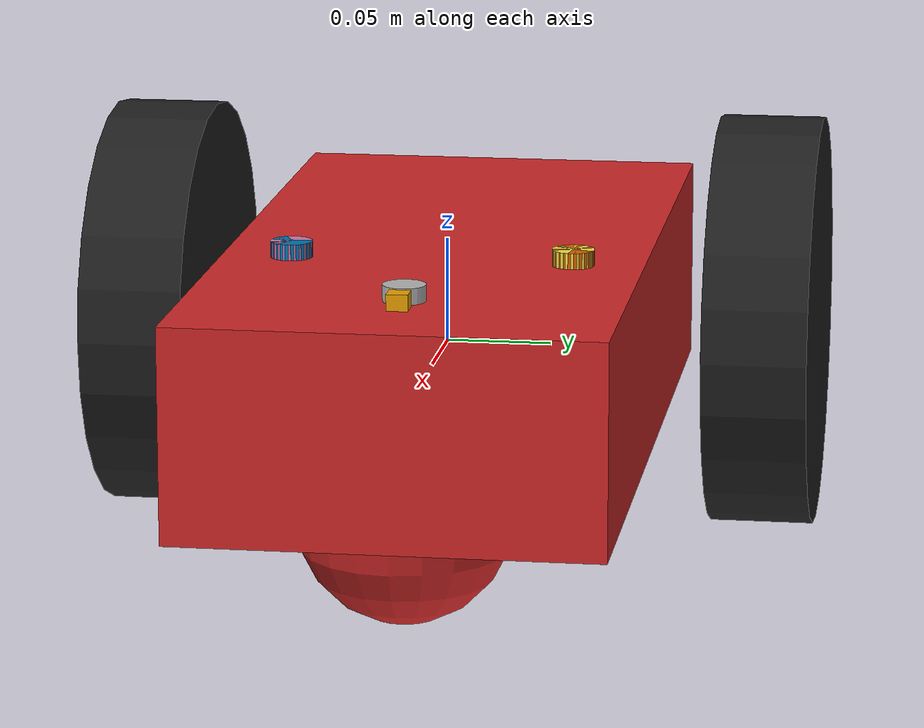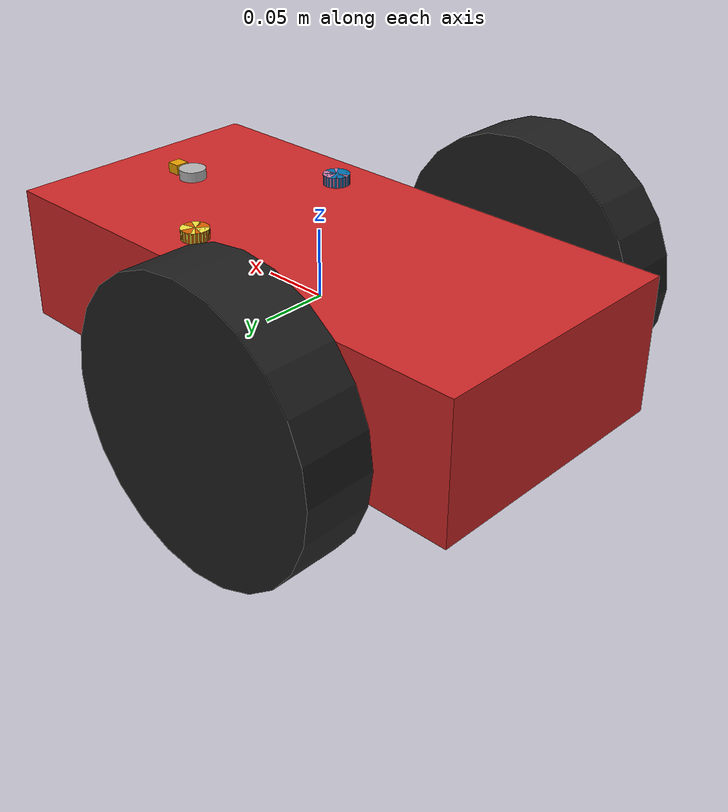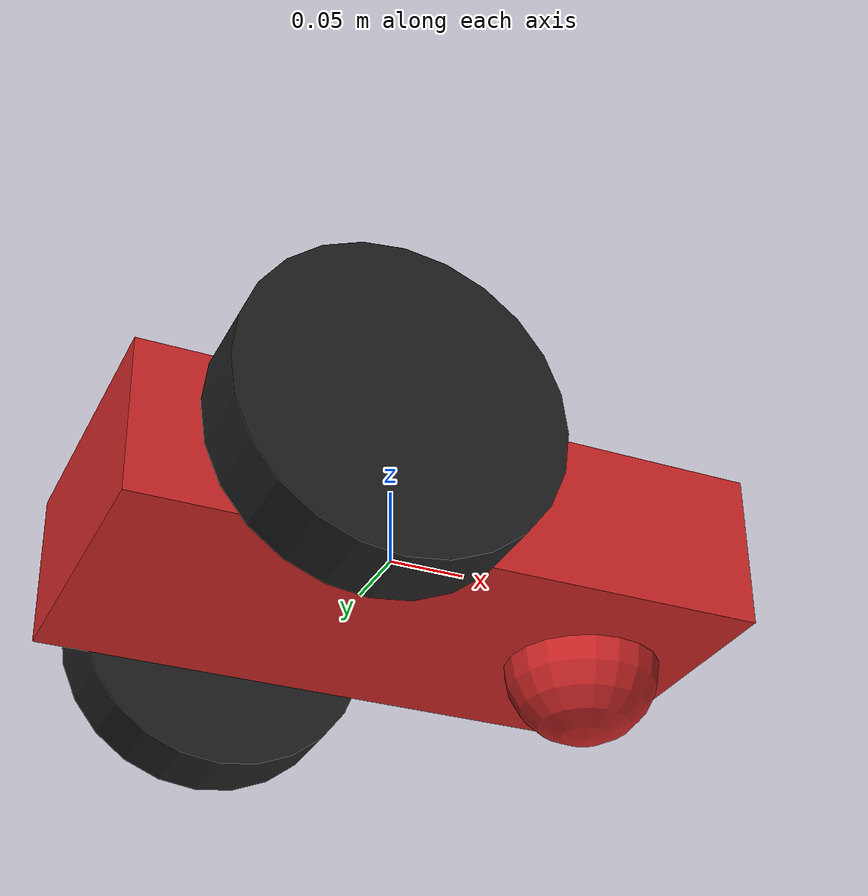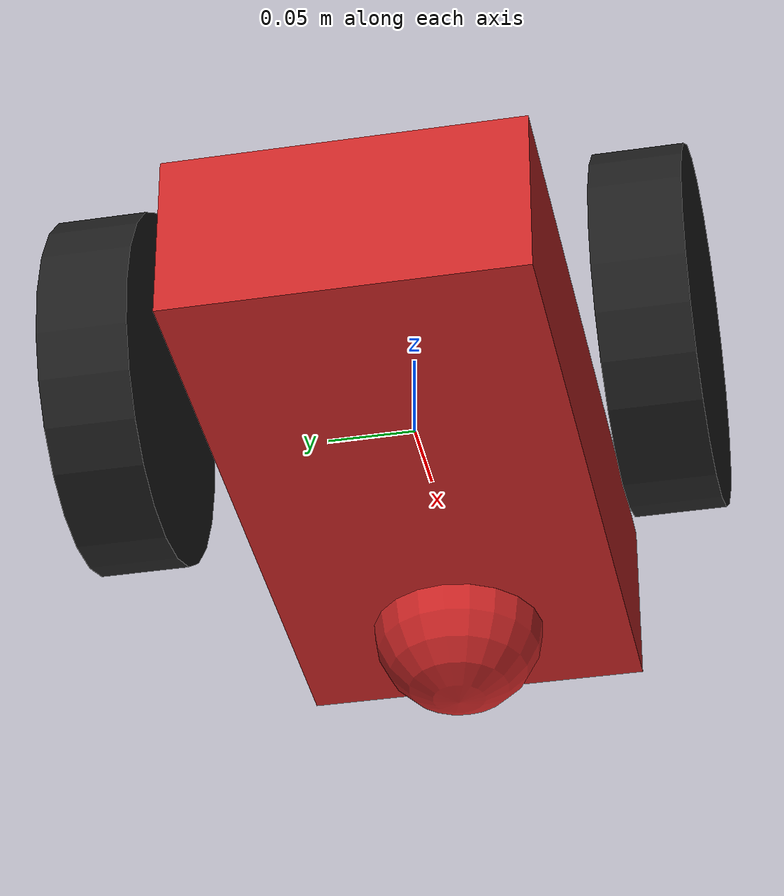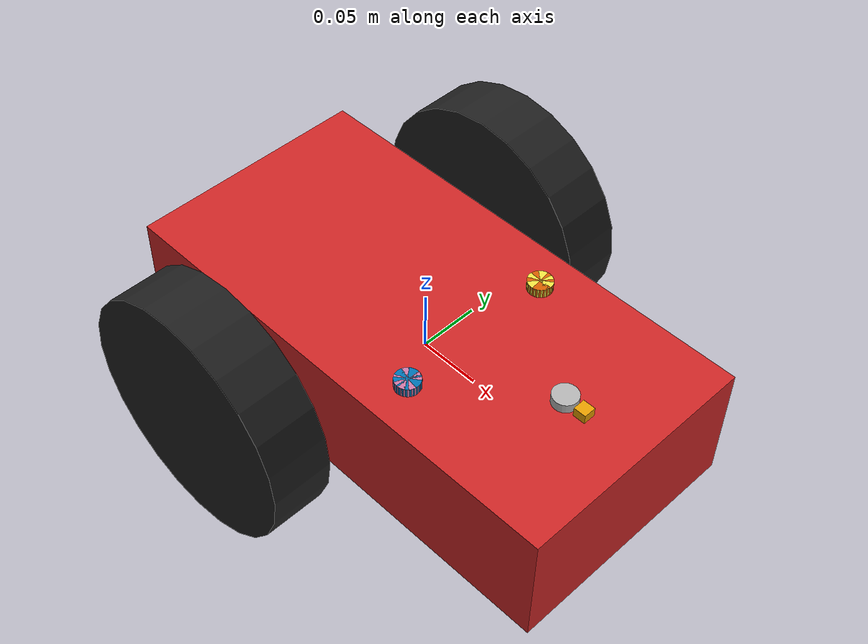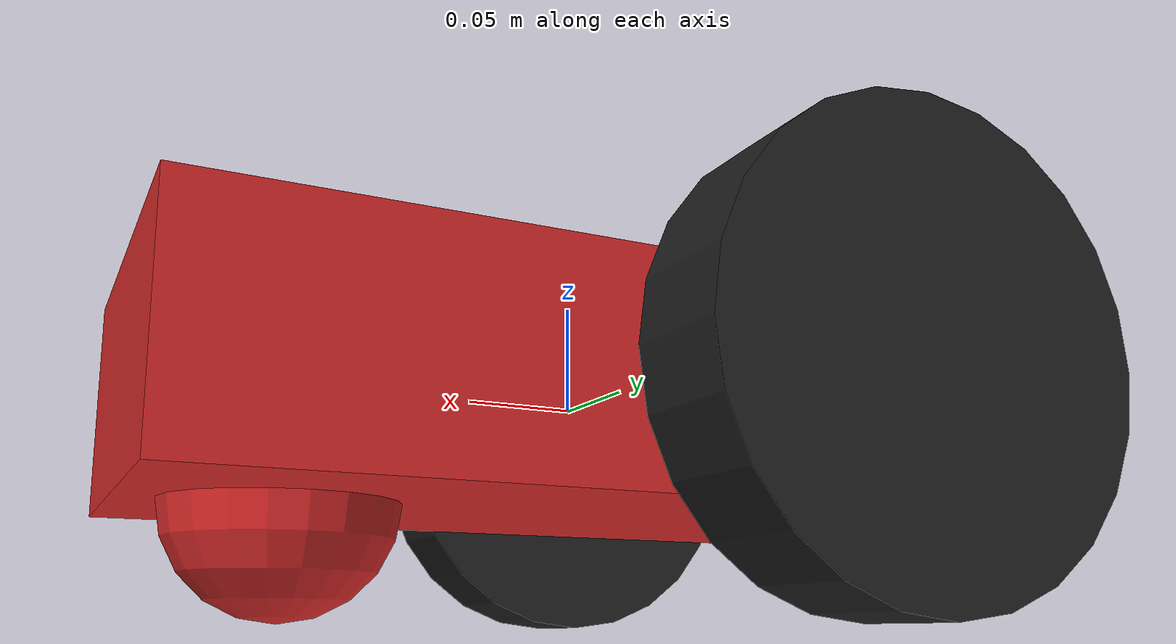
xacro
<?xml version='1.0'?>

<robot name="myrobot" xmlns:xacro="http://www.ros.org/wiki/xacro">

  <xacro:include filename="$(find mobile_robot_description)/urdf/mobile_robot.gazebo" />
  <xacro:include filename="$(find mobile_robot_description)/urdf/materials.xacro" />
    <xacro:property name="robot_length" value="0.40"/>
    <xacro:property name="robot_width"  value="0.20"/>
    <xacro:property name="robot_height" value="0.10"/>
    <xacro:property name="robot_mass" value="10"/>
    <xacro:property name="wheel_radius" value="0.10"/>
    <xacro:property name="wheel_length" value="0.05"/>
    <xacro:property name="wheel_mass" value="5"/>

  <link name='chassis'>

    <inertial>
      <mass value="${robot_mass}"/>
      <origin xyz="0.0 0 0.0" rpy=" 0 0 0"/>
      <inertia
          ixx="${(1/12)*(robot_mass)*(robot_width*robot_width+robot_height*robot_height)}" ixy="0" ixz="0"
          iyy="${(1/12)*(robot_mass)*(robot_length*robot_length+robot_height*robot_height)}" iyz="0"
          izz="${(1/12)*(robot_mass)*(robot_width*robot_width+robot_length*robot_length)}"
      />
    </inertial>

    <collision name='collision'>
      <geometry>
        <box size="${robot_length} ${robot_width} ${robot_height}"/>
      </geometry>
    </collision>

    <visual name='chassis_visual'>
      <geometry>
        <box size="${robot_length} ${robot_width} ${robot_height}"/>
      </geometry>
    </visual>

    <collision name='caster_collision'>
      <origin xyz="${robot_length/3} 0 ${-robot_height/2}" rpy=" 0 0 0"/>
      <geometry>
        <sphere radius="${robot_height/2}"/>
      </geometry>
    </collision>

    <visual name='caster_visual'>
      <origin xyz="${robot_length/3} 0 ${-robot_height/2}" rpy=" 0 0 0"/>
      <geometry>
        <sphere radius="${robot_height/2}"/>
      </geometry>
    </visual>
  </link>

  <link name="left_wheel">
    <!--origin xyz="0.1 0.13 0.1" rpy="0 1.5707 1.5707"/-->
    <collision name="collision">
      <origin xyz="0 0 0" rpy="0 1.5707 1.5707"/>
      <geometry>
        <cylinder radius="${wheel_radius}" length="${wheel_length}"/>
      </geometry>
    </collision>
    <visual name="left_wheel_visual">
      <origin xyz="0 0 0" rpy="0 1.5707 1.5707"/>
      <geometry>
        <cylinder radius="${wheel_radius}" length="${wheel_length}"/>
      </geometry>
    </visual>
    <inertial>
      <origin xyz="0 0 0" rpy="0 1.5707 1.5707"/>
      <mass value="${wheel_mass}"/>
      <cylinder_inertia m="${wheel_mass}" r="${wheel_radius}" h="${wheel_length}"/>
      <inertia
        ixx="${wheel_mass*(1/12)*(3*wheel_radius*wheel_radius+wheel_length*wheel_length)}" ixy="0.0" ixz="0.0"
        iyy="${wheel_mass*(0.5)*(wheel_radius*wheel_radius)}" iyz="0.0"
        izz="${wheel_mass*(1/12)*(3*wheel_radius*wheel_radius+wheel_length*wheel_length)}"/>
    </inertial>
  </link>

  <link name="right_wheel">
    <!--origin xyz="0.1 -0.13 0.1" rpy="0 1.5707 1.5707"/-->
    <collision name="collision">
      <origin xyz="0 0 0" rpy="0 1.5707 1.5707"/>
      <geometry>
        <cylinder radius="${wheel_radius}" length="${wheel_length}"/>
      </geometry>
    </collision>
    <visual name="right_wheel_visual">
      <origin xyz="0 0 0" rpy="0 1.5707 1.5707"/>
      <geometry>
        <cylinder radius="${wheel_radius}" length="${wheel_length}"/>
      </geometry>
    </visual>
    <inertial>
      <origin xyz="0 0 0" rpy="0 1.5707 1.5707"/>
      <mass value="${wheel_mass}"/>
      <cylinder_inertia m="${wheel_mass}" r="${wheel_radius}" h="${wheel_length}"/>
      <inertia
        ixx="${wheel_mass*(1/12)*(3*wheel_radius*wheel_radius+wheel_length*wheel_length)}" ixy="0.0" ixz="0.0"
        iyy="${wheel_mass*(0.5)*(wheel_radius*wheel_radius)}" iyz="0.0"
        izz="${wheel_mass*(1/12)*(3*wheel_radius*wheel_radius+wheel_length*wheel_length)}"/>
    </inertial>
  </link>

  <joint type="continuous" name="left_wheel_hinge">
    <origin xyz="-${robot_width/3} ${robot_width/2+wheel_length} 0" rpy="0 0 0"/>
    <child link="left_wheel"/>
    <parent link="chassis"/>
    <axis xyz="0 1 0" rpy="0 0 0"/>
  </joint>

  <joint type="continuous" name="right_wheel_hinge">
    <origin xyz="-${robot_width/3} -${robot_width/2+wheel_length} 0" rpy="0 0 0"/>
    <child link="right_wheel"/>
    <parent link="chassis"/>
    <axis xyz="0 1 0" rpy="0 0 0"/>
  </joint>

<!--Range Sensors Links and Joints-->

<link name="left_sensor1">
  <visual>
    <geometry>
      <cylinder length="0.01" radius="0.01"/>
    </geometry>
  </visual>
</link>

<joint name="left_sensor_joint1" type="fixed">
  <parent link="chassis"/>
  <child link="left_sensor1"/>
  <origin xyz="${robot_length/8} ${robot_width/3}  ${robot_height/1.9}" rpy="0 0 0.785"/>
</joint>

<link name="right_sensor1">
  <visual>
    <geometry>
      <cylinder length="0.01" radius="0.01"/>
    </geometry>
  </visual>
</link>
<joint name="right_sensor_joint1" type="fixed">
  <parent link="chassis"/>
  <child link="right_sensor1"/>
  <origin xyz="${robot_length/8} -${robot_width/3} ${robot_height/1.9}" rpy="0 0 -0.785"/>
</joint>

<link name="left_sensor2">
  <visual>
    <geometry>
      <cylinder length="0.01" radius="0.01"/>
    </geometry>
  </visual>
</link>

<joint name="left_sensor_joint2" type="fixed">
  <parent link="chassis"/>
  <child link="left_sensor2"/>
  <origin xyz="${robot_length/8} ${robot_width/3}  ${robot_height/1.9}" rpy="0 0 1.57"/>
</joint>

<link name="right_sensor2">
  <visual>
    <geometry>
      <cylinder length="0.01" radius="0.01"/>
    </geometry>
  </visual>
</link>
<joint name="right_sensor_joint2" type="fixed">
  <parent link="chassis"/>
  <child link="right_sensor2"/>
  <origin xyz="${robot_length/8} -${robot_width/3} ${robot_height/1.9}" rpy="0 0 -1.57"/>
</joint>

<link name="front_sensor">
  <visual>
    <geometry>
      <cylinder length="0.01" radius="0.01"/>
    </geometry>
  </visual>
</link>
<joint name="front_sensor_joint" type="fixed">
  <parent link="chassis"/>
  <child link="front_sensor"/>
  <origin xyz="${robot_length/3} 0 ${robot_height/1.9}" rpy="0 0 0"/>
</joint>

<joint name="sensor_laser_joint" type="fixed">
    <axis xyz="0 1 0" />
    <origin xyz="0.15 0 ${robot_height/1.9}" rpy="0 0 0"/>
    <parent link="chassis"/>
    <child link="sensor_laser"/>
  </joint>

  <!-- Hokuyo Laser -->
  <link name="sensor_laser">
    <collision>
      <origin xyz="0 0 0" rpy="0 0 0"/>
      <geometry>
    <box size="0.01 0.01 0.01"/>
      </geometry>
    </collision>

    <visual>
      <origin xyz="0 0 0" rpy="0 0 0"/>
      <geometry>
        <box size="0.01 0.01 0.01"/>
      </geometry>
    </visual>

    <inertial>
      <mass value="1e-5" />
      <origin xyz="0 0 0" rpy="0 0 0"/>
      <inertia ixx="1e-6" ixy="0" ixz="0" iyy="1e-6" iyz="0" izz="1e-6" />
    </inertial>
  </link>

</robot>
